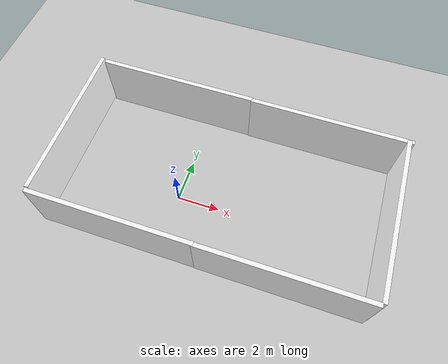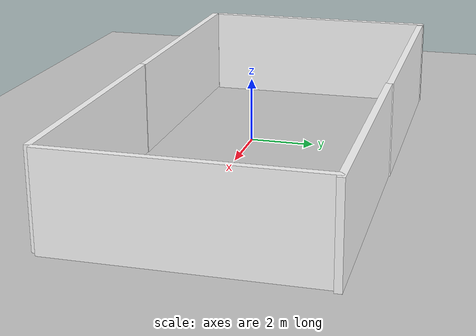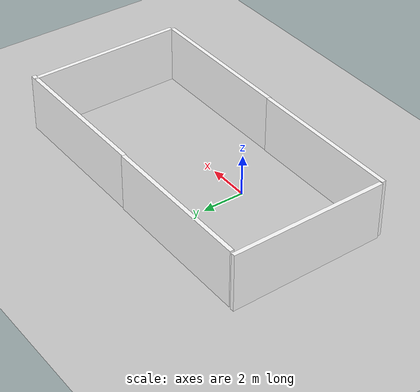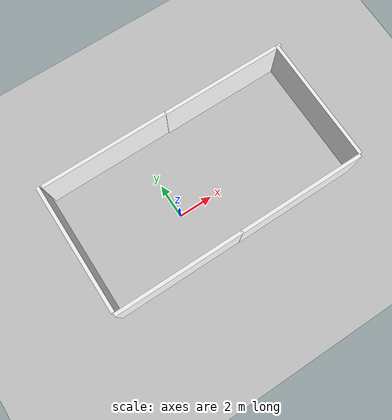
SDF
<sdf version="1.6">
 <world name="default">
  <physics name="default_physics" default="0" type="ode">
   <max_step_size>0.001</max_step_size>
   <real_time_factor>1</real_time_factor>
   <real_time_update_rate>1000</real_time_update_rate>
  </physics>
  <plugin filename="ignition-gazebo-physics-system" name="ignition::gazebo::systems::Physics"/>
  <plugin filename="ignition-gazebo-user-commands-system" name="ignition::gazebo::systems::UserCommands"/>
  <plugin filename="ignition-gazebo-scene-broadcaster-system" name="ignition::gazebo::systems::SceneBroadcaster"/>
  <plugin filename="libignition-gazebo-sensors-system.so" name="ignition::gazebo::systems::Sensors">
   <render_engine>ogre</render_engine>
  </plugin>
  <light name="sun" type="directional">
   <pose>0 0 10 0 -0 0</pose>
   <diffuse>0.8 0.8 0.8 1</diffuse>
   <specular>0.2 0.2 0.2 1</specular>
   <attenuation>
    <range>1000</range>
    <constant>0.9</constant>
    <linear>0.01</linear>
    <quadratic>0.001</quadratic>
   </attenuation>
   <direction>-0.5 0.1 -0.9</direction>
  </light>
  <model name="ground_plane">
   <static>1</static>
   <link name="link">
    <collision name="collision">
     <geometry><plane><normal>0 0 1</normal><size>100 100</size></plane></geometry>
     <surface><friction><ode><mu>100</mu><mu2>50</mu2></ode></friction></surface>
    </collision>
    <visual name="visual">
     <cast_shadows>0</cast_shadows>
     <geometry><plane><normal>0 0 1</normal><size>100 100</size></plane></geometry>
     <material>
      <ambient>0.8 0.8 0.8 1</ambient>
      <diffuse>0.8 0.8 0.8 1</diffuse>
      <specular>0.8 0.8 0.8 1</specular>
     </material>
    </visual>
   </link>
  </model>
  <gravity>0 0 -9.8</gravity>
  <magnetic_field>6e-06 2.3e-05 -4.2e-05</magnetic_field>
  <atmosphere type="adiabatic"/>
  <spherical_coordinates>
   <surface_model>EARTH_WGS84</surface_model>
   <latitude_deg>0</latitude_deg>
   <longitude_deg>0</longitude_deg>
   <elevation>0</elevation>
   <heading_deg>0</heading_deg>
  </spherical_coordinates>
  <model name="grey_wall">
   <static>1</static>
   <link name="link">
    <pose>0 0 1.4 0 -0 0</pose>
    <collision name="collision"><geometry><box><size>7.5 0.2 2.8</size></box></geometry></collision>
    <visual name="visual">
     <cast_shadows>0</cast_shadows>
     <geometry><box><size>7.5 0.2 2.8</size></box></geometry>
     <material>
      <diffuse>1.0 1.0 1.0</diffuse>
      <specular>1.0 1.0 1.0</specular>
      <ambient>1.0 1.0 1.0</ambient>
      <pbr><metal><albedo_map>model://wall/materials/textures/grey_wall.png</albedo_map></metal></pbr>
     </material>
    </visual>
   </link>
   <pose>-1.64334 4.63067 0 0 -0 0</pose>
  </model>
  <model name="grey_wall_0">
   <static>1</static>
   <link name="link">
    <pose>0 0 1.4 0 -0 0</pose>
    <collision name="collision"><geometry><box><size>7.5 0.2 2.8</size></box></geometry></collision>
    <visual name="visual">
     <cast_shadows>0</cast_shadows>
     <geometry><box><size>7.5 0.2 2.8</size></box></geometry>
     <material>
      <diffuse>1.0 1.0 1.0</diffuse>
      <specular>1.0 1.0 1.0</specular>
      <ambient>1.0 1.0 1.0</ambient>
      <pbr><metal><albedo_map>model://wall/materials/textures/grey_wall.png</albedo_map></metal></pbr>
     </material>
    </visual>
   </link>
   <pose>5.81435 4.59903 0 0 -0 0</pose>
  </model>
  <model name="grey_wall_1">
   <static>1</static>
   <link name="link">
    <pose>0 0 1.4 0 -0 0</pose>
    <collision name="collision"><geometry><box><size>7.5 0.2 2.8</size></box></geometry></collision>
    <visual name="visual">
     <cast_shadows>0</cast_shadows>
     <geometry><box><size>7.5 0.2 2.8</size></box></geometry>
     <material>
      <diffuse>1.0 1.0 1.0</diffuse>
      <specular>1.0 1.0 1.0</specular>
      <ambient>1.0 1.0 1.0</ambient>
      <pbr><metal><albedo_map>model://wall/materials/textures/grey_wall.png</albedo_map></metal></pbr>
     </material>
    </visual>
   </link>
   <pose>-1.78325 -2.8879 0 0 -0 0</pose>
  </model>
  <model name="grey_wall_2">
   <static>1</static>
   <link name="link">
    <pose>0 0 1.4 0 -0 0</pose>
    <collision name="collision"><geometry><box><size>7.5 0.2 2.8</size></box></geometry></collision>
    <visual name="visual">
     <cast_shadows>0</cast_shadows>
     <geometry><box><size>7.5 0.2 2.8</size></box></geometry>
     <material>
      <diffuse>1.0 1.0 1.0</diffuse>
      <specular>1.0 1.0 1.0</specular>
      <ambient>1.0 1.0 1.0</ambient>
      <pbr><metal><albedo_map>model://wall/materials/textures/grey_wall.png</albedo_map></metal></pbr>
     </material>
    </visual>
   </link>
   <pose>5.62796 -2.90506 0 0 -0 0</pose>
  </model>
  <model name="grey_wall_3">
   <static>1</static>
   <link name="link">
    <pose>0 0 1.4 0 -0 0</pose>
    <collision name="collision"><geometry><box><size>7.5 0.2 2.8</size></box></geometry></collision>
    <visual name="visual">
     <cast_shadows>0</cast_shadows>
     <geometry><box><size>7.5 0.2 2.8</size></box></geometry>
     <material>
      <diffuse>1.0 1.0 1.0</diffuse>
      <specular>1.0 1.0 1.0</specular>
      <ambient>1.0 1.0 1.0</ambient>
      <pbr><metal><albedo_map>model://wall/materials/textures/grey_wall.png</albedo_map></metal></pbr>
     </material>
    </visual>
   </link>
   <pose>-5.55347 0.998715 0 0 -0 1.58073</pose>
  </model>
  <model name="grey_wall_3_clone">
   <static>1</static>
   <link name="link">
    <pose>0 0 1.4 0 -0 0</pose>
    <collision name="collision"><geometry><box><size>7.5 0.2 2.8</size></box></geometry></collision>
    <visual name="visual">
     <cast_shadows>0</cast_shadows>
     <geometry><box><size>7.5 0.2 2.8</size></box></geometry>
     <material>
      <diffuse>1.0 1.0 1.0</diffuse>
      <specular>1.0 1.0 1.0</specular>
      <ambient>1.0 1.0 1.0</ambient>
      <pbr><metal><albedo_map>model://wall/materials/textures/grey_wall.png</albedo_map></metal></pbr>
     </material>
    </visual>
   </link>
   <pose>9.3891 0.91101 0 0 -0 1.58073</pose>
  </model>
  <camera name="user_camera">
   <pose>8.81617 -6.25983 14.2445 0 0.809797 2.28021</pose>
   <view_controller>orbit</view_controller>
   <projection_type>perspective</projection_type>
  </camera>
 </world>
</sdf>
